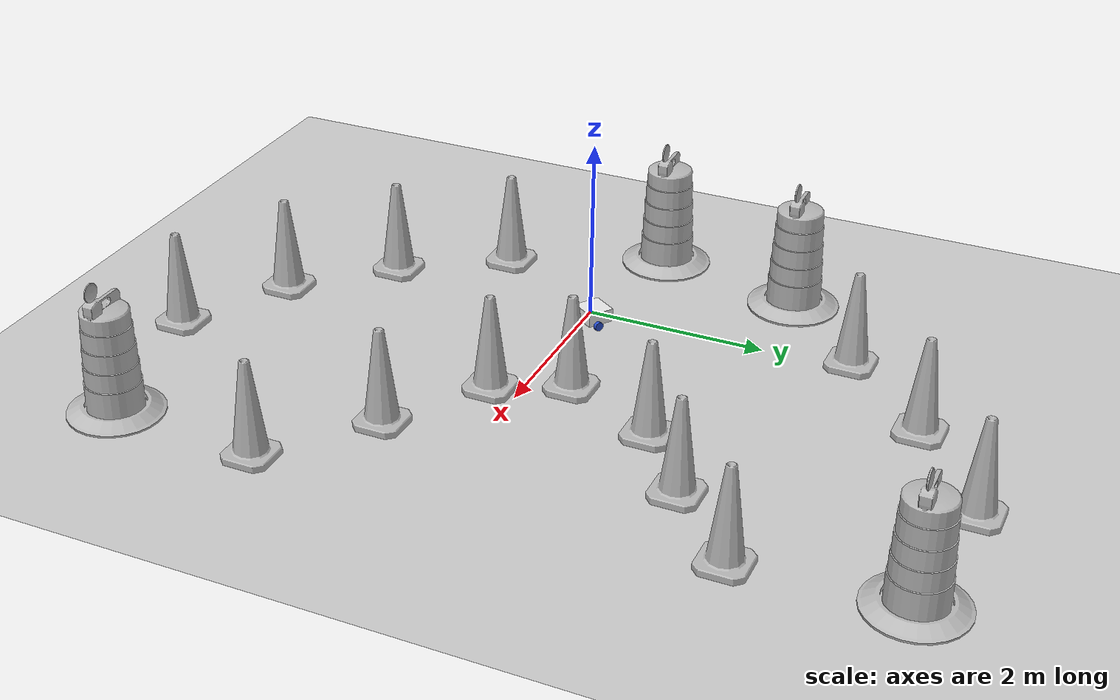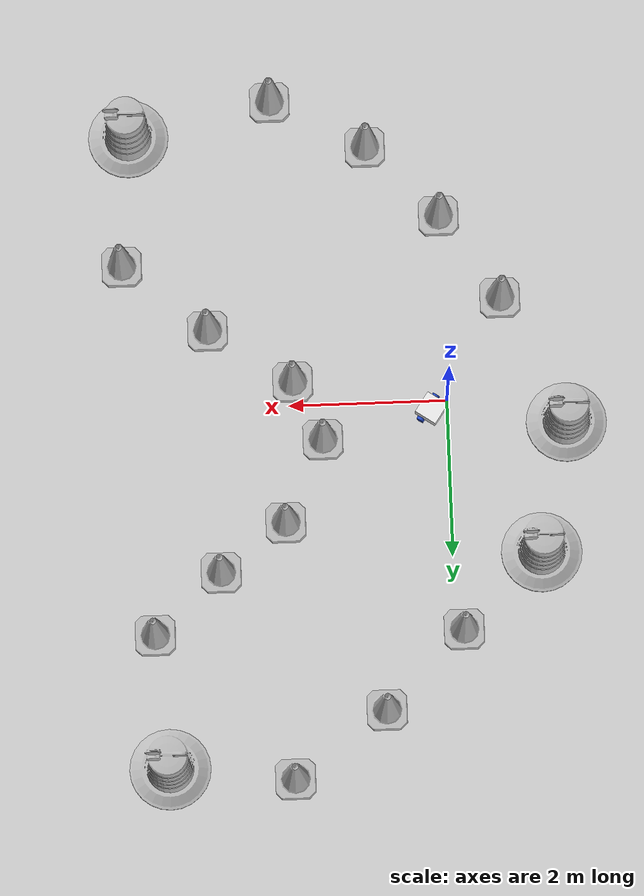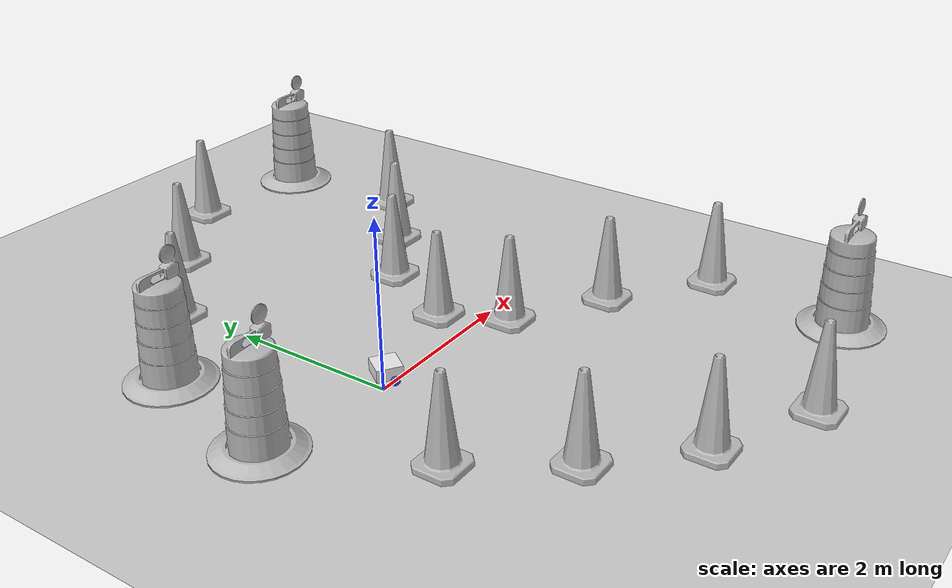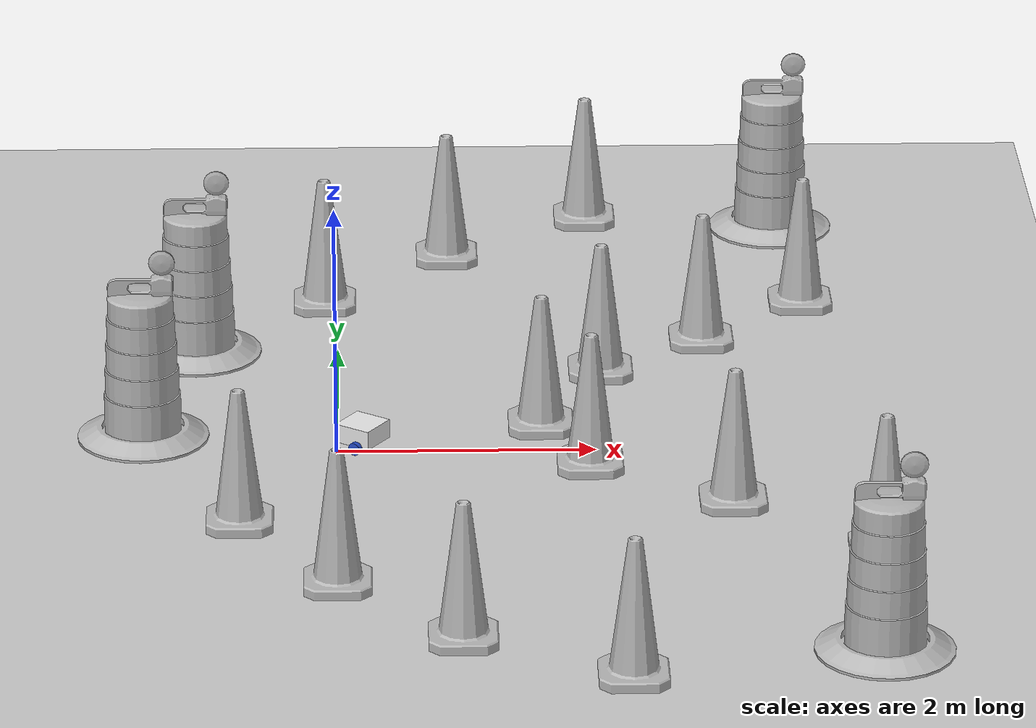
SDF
<sdf version="1.7">
 <world name="default">
  <light name="sun" type="directional">
   <pose>0 0 10 0 -0 0</pose>
   <diffuse>0.8 0.8 0.8 1</diffuse>
   <specular>0.2 0.2 0.2 1</specular>
   <attenuation>
    <range>1000</range>
    <constant>0.9</constant>
    <linear>0.01</linear>
    <quadratic>0.001</quadratic>
   </attenuation>
   <direction>-0.5 0.1 -0.9</direction>
   <spot><inner_angle>0</inner_angle><outer_angle>0</outer_angle><falloff>0</falloff></spot>
  </light>
  <model name="ground_plane">
   <static>1</static>
   <link name="link">
    <collision name="collision">
     <geometry><plane><normal>0 0 1</normal><size>100 100</size></plane></geometry>
     <surface>
      <contact><collide_bitmask>65535</collide_bitmask></contact>
      <friction><ode><mu>100</mu><mu2>50</mu2></ode></friction>
     </surface>
    </collision>
    <visual name="visual">
     <cast_shadows>0</cast_shadows>
     <geometry><plane><normal>0 0 1</normal><size>100 100</size></plane></geometry>
     <material>
      <script><uri>file://media/materials/scripts/gazebo.material</uri><name>Gazebo/Grey</name></script>
     </material>
    </visual>
   </link>
  </model>
  <gravity>0 0 -9.8</gravity>
  <magnetic_field>6e-06 2.3e-05 -4.2e-05</magnetic_field>
  <atmosphere type="adiabatic"/>
  <physics type="ode">
   <max_step_size>0.001</max_step_size>
   <real_time_factor>1</real_time_factor>
   <real_time_update_rate>1000</real_time_update_rate>
  </physics>
  <scene><ambient>0.4 0.4 0.4 1</ambient><background>0.7 0.7 0.7 1</background><shadows>1</shadows></scene>
  <audio><device>default</device></audio>
  <spherical_coordinates>
   <surface_model>EARTH_WGS84</surface_model>
   <latitude_deg>0</latitude_deg>
   <longitude_deg>0</longitude_deg>
   <elevation>0</elevation>
   <heading_deg>0</heading_deg>
  </spherical_coordinates>
  <model name="my_bot">
   <link name="base_link">
    <inertial>
     <pose>0.065 0 0.0625 0 -0 0</pose>
     <mass>0.6</mass>
     <inertia>
      <ixx>0.00525625</ixx>
      <ixy>0</ixy>
      <ixz>0.0005625</ixz>
      <iyy>0.00593125</iyy>
      <iyz>0</iyz>
      <izz>0.008275</izz>
     </inertia>
    </inertial>
    <collision name="base_link_fixed_joint_lump__chassis_collision">
     <pose>0.05 0 0.075 0 -0 0</pose>
     <geometry><box><size>0.3 0.3 0.15</size></box></geometry>
    </collision>
    <collision name="base_link_fixed_joint_lump__caster_wheel_collision_1">
     <pose>0.14 0 0 0 -0 0</pose>
     <geometry><sphere><radius>0.05</radius></sphere></geometry>
     <surface><friction><ode><mu>0.001</mu><mu2>0.001</mu2></ode></friction></surface>
    </collision>
    <visual name="base_link_fixed_joint_lump__chassis_visual">
     <pose>0.05 0 0.075 0 -0 0</pose>
     <geometry><box><size>0.3 0.3 0.15</size></box></geometry>
     <material>
      <script><name>Gazebo/White</name><uri>file://media/materials/scripts/gazebo.material</uri></script>
     </material>
    </visual>
    <visual name="base_link_fixed_joint_lump__caster_wheel_visual_1">
     <pose>0.14 0 0 0 -0 0</pose>
     <geometry><sphere><radius>0.05</radius></sphere></geometry>
     <material>
      <script><name>Gazebo/Black</name><uri>file://media/materials/scripts/gazebo.material</uri></script>
     </material>
    </visual>
   </link>
   <joint name="left_wheel_joint" type="revolute">
    <pose relative_to="base_link">0 0.175 0 -1.5708 0 0</pose>
    <parent>base_link</parent>
    <child>left_wheel</child>
    <axis>
     <xyz>0 0 1</xyz>
     <limit><lower>-1e+16</lower><upper>1e+16</upper></limit>
     <dynamics><spring_reference>0</spring_reference><spring_stiffness>0</spring_stiffness></dynamics>
    </axis>
   </joint>
   <link name="left_wheel">
    <pose relative_to="left_wheel_joint">0 0 0 0 -0 0</pose>
    <inertial>
     <mass>0.1</mass>
     <inertia>
      <ixx>7.58333e-05</ixx>
      <ixy>0</ixy>
      <ixz>0</ixz>
      <iyy>7.58333e-05</iyy>
      <iyz>0</iyz>
      <izz>0.000125</izz>
     </inertia>
    </inertial>
    <collision name="left_wheel_collision">
     <geometry><cylinder><length>0.04</length><radius>0.05</radius></cylinder></geometry>
    </collision>
    <visual name="left_wheel_visual">
     <geometry><cylinder><length>0.04</length><radius>0.05</radius></cylinder></geometry>
     <material>
      <script><name>Gazebo/Blue</name><uri>file://media/materials/scripts/gazebo.material</uri></script>
     </material>
    </visual>
   </link>
   <joint name="right_wheel_joint" type="revolute">
    <pose relative_to="base_link">0 -0.175 0 1.5708 -0 0</pose>
    <parent>base_link</parent>
    <child>right_wheel</child>
    <axis>
     <xyz>0 0 -1</xyz>
     <limit><lower>-1e+16</lower><upper>1e+16</upper></limit>
     <dynamics><spring_reference>0</spring_reference><spring_stiffness>0</spring_stiffness></dynamics>
    </axis>
   </joint>
   <link name="right_wheel">
    <pose relative_to="right_wheel_joint">0 0 0 0 -0 0</pose>
    <inertial>
     <mass>0.1</mass>
     <inertia>
      <ixx>7.58333e-05</ixx>
      <ixy>0</ixy>
      <ixz>0</ixz>
      <iyy>7.58333e-05</iyy>
      <iyz>0</iyz>
      <izz>0.000125</izz>
     </inertia>
    </inertial>
    <collision name="right_wheel_collision">
     <geometry><cylinder><length>0.04</length><radius>0.05</radius></cylinder></geometry>
    </collision>
    <visual name="right_wheel_visual">
     <geometry><cylinder><length>0.04</length><radius>0.05</radius></cylinder></geometry>
     <material>
      <script><name>Gazebo/Blue</name><uri>file://media/materials/scripts/gazebo.material</uri></script>
     </material>
    </visual>
   </link>
   <static>0</static>
   <plugin name="diff_drive" filename="libgazebo_ros_diff_drive.so">
    <left_joint>left_wheel_joint</left_joint>
    <right_joint>right_wheel_joint</right_joint>
    <wheel_separation>0.35</wheel_separation>
    <wheel_diameter>0.1</wheel_diameter>
    <max_wheel_torque>200</max_wheel_torque>
    <max_wheel_acceleration>10.0</max_wheel_acceleration>
    <odometry_frame>odom</odometry_frame>
    <robot_base_frame>base_link</robot_base_frame>
    <publish_odom>1</publish_odom>
    <publish_odom_tf>1</publish_odom_tf>
    <publish_wheel_tf>1</publish_wheel_tf>
   </plugin>
   <pose>0.24301 0.093611 0.05 0 3e-06 2.54337</pose>
  </model>
  <model name="Construction Barrel">
   <link name="link">
    <inertial>
     <pose>0 0 0.4 0 -0 0</pose>
     <mass>500</mass>
     <inertia><ixx>51.2096</ixx><iyy>51.2096</iyy><izz>25</izz><ixy>0</ixy><ixz>0</ixz><iyz>0</iyz></inertia>
    </inertial>
    <collision name="collision">
     <geometry><mesh><uri>model://construction_barrel/meshes/construction_barrel.dae</uri></mesh></geometry>
    </collision>
    <visual name="visual">
     <geometry><mesh><uri>model://construction_barrel/meshes/construction_barrel.dae</uri></mesh></geometry>
    </visual>
   </link>
   <pose>-1.49739 0.326503 -2e-06 -7e-06 4e-06 -1.5e-05</pose>
  </model>
  <model name="Construction Barrel_0">
   <link name="link">
    <inertial>
     <pose>0 0 0.4 0 -0 0</pose>
     <mass>500</mass>
     <inertia><ixx>51.2096</ixx><iyy>51.2096</iyy><izz>25</izz><ixy>0</ixy><ixz>0</ixz><iyz>0</iyz></inertia>
    </inertial>
    <collision name="collision">
     <geometry><mesh><uri>model://construction_barrel/meshes/construction_barrel.dae</uri></mesh></geometry>
    </collision>
    <visual name="visual">
     <geometry><mesh><uri>model://construction_barrel/meshes/construction_barrel.dae</uri></mesh></geometry>
    </visual>
   </link>
   <pose>-1.11816 1.98829 -1e-06 3e-06 -2e-06 -8e-06</pose>
  </model>
  <model name="Construction Cone">
   <link name="link">
    <collision name="collision">
     <geometry>
      <mesh><scale>10 10 10</scale><uri>model://construction_cone/meshes/construction_cone.dae</uri></mesh>
     </geometry>
    </collision>
    <visual name="visual">
     <geometry>
      <mesh><scale>10 10 10</scale><uri>model://construction_cone/meshes/construction_cone.dae</uri></mesh>
     </geometry>
    </visual>
    <inertial>
     <inertia><ixx>1</ixx><ixy>0</ixy><ixz>0</ixz><iyy>1</iyy><iyz>0</iyz><izz>1</izz></inertia>
     <mass>1</mass>
    </inertial>
   </link>
   <pose>-0.719535 -1.30875 -0 0 -0 0</pose>
  </model>
  <model name="Construction Cone_0">
   <link name="link">
    <collision name="collision">
     <geometry>
      <mesh><scale>10 10 10</scale><uri>model://construction_cone/meshes/construction_cone.dae</uri></mesh>
     </geometry>
    </collision>
    <visual name="visual">
     <geometry>
      <mesh><scale>10 10 10</scale><uri>model://construction_cone/meshes/construction_cone.dae</uri></mesh>
     </geometry>
    </visual>
    <inertial>
     <inertia><ixx>1</ixx><ixy>0</ixy><ixz>0</ixz><iyy>1</iyy><iyz>0</iyz><izz>1</izz></inertia>
     <mass>1</mass>
    </inertial>
   </link>
   <pose>0.019819 -2.404 -0 0 -1e-06 0</pose>
  </model>
  <model name="Construction Cone_1">
   <link name="link">
    <collision name="collision">
     <geometry>
      <mesh><scale>10 10 10</scale><uri>model://construction_cone/meshes/construction_cone.dae</uri></mesh>
     </geometry>
    </collision>
    <visual name="visual">
     <geometry>
      <mesh><scale>10 10 10</scale><uri>model://construction_cone/meshes/construction_cone.dae</uri></mesh>
     </geometry>
    </visual>
    <inertial>
     <inertia><ixx>1</ixx><ixy>0</ixy><ixz>0</ixz><iyy>1</iyy><iyz>0</iyz><izz>1</izz></inertia>
     <mass>1</mass>
    </inertial>
   </link>
   <pose>0.924897 -3.33489 -0 0 -1e-06 0</pose>
  </model>
  <model name="Construction Cone_2">
   <link name="link">
    <collision name="collision">
     <geometry>
      <mesh><scale>10 10 10</scale><uri>model://construction_cone/meshes/construction_cone.dae</uri></mesh>
     </geometry>
    </collision>
    <visual name="visual">
     <geometry>
      <mesh><scale>10 10 10</scale><uri>model://construction_cone/meshes/construction_cone.dae</uri></mesh>
     </geometry>
    </visual>
    <inertial>
     <inertia><ixx>1</ixx><ixy>0</ixy><ixz>0</ixz><iyy>1</iyy><iyz>0</iyz><izz>1</izz></inertia>
     <mass>1</mass>
    </inertial>
   </link>
   <pose>2.12257 -3.96742 -0 0 -1e-06 0</pose>
  </model>
  <model name="Construction Cone_clone">
   <link name="link">
    <collision name="collision">
     <geometry>
      <mesh><scale>10 10 10</scale><uri>model://construction_cone/meshes/construction_cone.dae</uri></mesh>
     </geometry>
    </collision>
    <visual name="visual">
     <geometry>
      <mesh><scale>10 10 10</scale><uri>model://construction_cone/meshes/construction_cone.dae</uri></mesh>
     </geometry>
    </visual>
    <inertial>
     <inertia><ixx>1</ixx><ixy>0</ixy><ixz>0</ixz><iyy>1</iyy><iyz>0</iyz><izz>1</izz></inertia>
     <mass>1</mass>
    </inertial>
   </link>
   <pose>4.06567 -1.87071 -0 0 -1e-06 0</pose>
  </model>
  <model name="Construction Cone_clone_0">
   <link name="link">
    <collision name="collision">
     <geometry>
      <mesh><scale>10 10 10</scale><uri>model://construction_cone/meshes/construction_cone.dae</uri></mesh>
     </geometry>
    </collision>
    <visual name="visual">
     <geometry>
      <mesh><scale>10 10 10</scale><uri>model://construction_cone/meshes/construction_cone.dae</uri></mesh>
     </geometry>
    </visual>
    <inertial>
     <inertia><ixx>1</ixx><ixy>0</ixy><ixz>0</ixz><iyy>1</iyy><iyz>0</iyz><izz>1</izz></inertia>
     <mass>1</mass>
    </inertial>
   </link>
   <pose>3 -1 -0 0 -1e-06 0</pose>
  </model>
  <model name="Construction Cone_clone_1">
   <link name="link">
    <collision name="collision">
     <geometry>
      <mesh><scale>10 10 10</scale><uri>model://construction_cone/meshes/construction_cone.dae</uri></mesh>
     </geometry>
    </collision>
    <visual name="visual">
     <geometry>
      <mesh><scale>10 10 10</scale><uri>model://construction_cone/meshes/construction_cone.dae</uri></mesh>
     </geometry>
    </visual>
    <inertial>
     <inertia><ixx>1</ixx><ixy>0</ixy><ixz>0</ixz><iyy>1</iyy><iyz>0</iyz><izz>1</izz></inertia>
     <mass>1</mass>
    </inertial>
   </link>
   <pose>1.9432 -0.302292 -0 0 -1e-06 0</pose>
  </model>
  <model name="Construction Cone_clone_2">
   <link name="link">
    <collision name="collision">
     <geometry>
      <mesh><scale>10 10 10</scale><uri>model://construction_cone/meshes/construction_cone.dae</uri></mesh>
     </geometry>
    </collision>
    <visual name="visual">
     <geometry>
      <mesh><scale>10 10 10</scale><uri>model://construction_cone/meshes/construction_cone.dae</uri></mesh>
     </geometry>
    </visual>
    <inertial>
     <inertia><ixx>1</ixx><ixy>0</ixy><ixz>0</ixz><iyy>1</iyy><iyz>0</iyz><izz>1</izz></inertia>
     <mass>1</mass>
    </inertial>
   </link>
   <pose>1.58549 0.454639 -0 0 -1e-06 0</pose>
  </model>
  <model name="Construction Cone_clone_3">
   <link name="link">
    <collision name="collision">
     <geometry>
      <mesh><scale>10 10 10</scale><uri>model://construction_cone/meshes/construction_cone.dae</uri></mesh>
     </geometry>
    </collision>
    <visual name="visual">
     <geometry>
      <mesh><scale>10 10 10</scale><uri>model://construction_cone/meshes/construction_cone.dae</uri></mesh>
     </geometry>
    </visual>
    <inertial>
     <inertia><ixx>1</ixx><ixy>0</ixy><ixz>0</ixz><iyy>1</iyy><iyz>0</iyz><izz>1</izz></inertia>
     <mass>1</mass>
    </inertial>
   </link>
   <pose>2.92026 2.11945 -0 0 -1e-06 0</pose>
  </model>
  <model name="Construction Cone_clone_4">
   <link name="link">
    <collision name="collision">
     <geometry>
      <mesh><scale>10 10 10</scale><uri>model://construction_cone/meshes/construction_cone.dae</uri></mesh>
     </geometry>
    </collision>
    <visual name="visual">
     <geometry>
      <mesh><scale>10 10 10</scale><uri>model://construction_cone/meshes/construction_cone.dae</uri></mesh>
     </geometry>
    </visual>
    <inertial>
     <inertia><ixx>1</ixx><ixy>0</ixy><ixz>0</ixz><iyy>1</iyy><iyz>0</iyz><izz>1</izz></inertia>
     <mass>1</mass>
    </inertial>
   </link>
   <pose>2.08782 1.50647 -0 0 -1e-06 0</pose>
  </model>
  <model name="Construction Cone_clone_5">
   <link name="link">
    <collision name="collision">
     <geometry>
      <mesh><scale>10 10 10</scale><uri>model://construction_cone/meshes/construction_cone.dae</uri></mesh>
     </geometry>
    </collision>
    <visual name="visual">
     <geometry>
      <mesh><scale>10 10 10</scale><uri>model://construction_cone/meshes/construction_cone.dae</uri></mesh>
     </geometry>
    </visual>
    <inertial>
     <inertia><ixx>1</ixx><ixy>0</ixy><ixz>0</ixz><iyy>1</iyy><iyz>0</iyz><izz>1</izz></inertia>
     <mass>1</mass>
    </inertial>
   </link>
   <pose>3.76884 2.89296 -0 0 -1e-06 0</pose>
  </model>
  <model name="Construction Cone_clone_6">
   <link name="link">
    <collision name="collision">
     <geometry>
      <mesh><scale>10 10 10</scale><uri>model://construction_cone/meshes/construction_cone.dae</uri></mesh>
     </geometry>
    </collision>
    <visual name="visual">
     <geometry>
      <mesh><scale>10 10 10</scale><uri>model://construction_cone/meshes/construction_cone.dae</uri></mesh>
     </geometry>
    </visual>
    <inertial>
     <inertia><ixx>1</ixx><ixy>0</ixy><ixz>0</ixz><iyy>1</iyy><iyz>0</iyz><izz>1</izz></inertia>
     <mass>1</mass>
    </inertial>
   </link>
   <pose>-0.106081 2.94437 -0 0 -1e-06 0</pose>
  </model>
  <model name="Construction Cone_clone_7">
   <link name="link">
    <collision name="collision">
     <geometry>
      <mesh><scale>10 10 10</scale><uri>model://construction_cone/meshes/construction_cone.dae</uri></mesh>
     </geometry>
    </collision>
    <visual name="visual">
     <geometry>
      <mesh><scale>10 10 10</scale><uri>model://construction_cone/meshes/construction_cone.dae</uri></mesh>
     </geometry>
    </visual>
    <inertial>
     <inertia><ixx>1</ixx><ixy>0</ixy><ixz>0</ixz><iyy>1</iyy><iyz>0</iyz><izz>1</izz></inertia>
     <mass>1</mass>
    </inertial>
   </link>
   <pose>0.897981 3.9353 -0 0 -1e-06 0</pose>
  </model>
  <model name="Construction Cone_clone_8">
   <link name="link">
    <collision name="collision">
     <geometry>
      <mesh><scale>10 10 10</scale><uri>model://construction_cone/meshes/construction_cone.dae</uri></mesh>
     </geometry>
    </collision>
    <visual name="visual">
     <geometry>
      <mesh><scale>10 10 10</scale><uri>model://construction_cone/meshes/construction_cone.dae</uri></mesh>
     </geometry>
    </visual>
    <inertial>
     <inertia><ixx>1</ixx><ixy>0</ixy><ixz>0</ixz><iyy>1</iyy><iyz>0</iyz><izz>1</izz></inertia>
     <mass>1</mass>
    </inertial>
   </link>
   <pose>2.06913 4.76921 -0 0 -1e-06 0</pose>
  </model>
  <model name="Construction Barrel_clone">
   <link name="link">
    <inertial>
     <pose>0 0 0.4 0 -0 0</pose>
     <mass>500</mass>
     <inertia><ixx>51.2096</ixx><iyy>51.2096</iyy><izz>25</izz><ixy>0</ixy><ixz>0</ixz><iyz>0</iyz></inertia>
    </inertial>
    <collision name="collision">
     <geometry><mesh><uri>model://construction_barrel/meshes/construction_barrel.dae</uri></mesh></geometry>
    </collision>
    <visual name="visual">
     <geometry><mesh><uri>model://construction_barrel/meshes/construction_barrel.dae</uri></mesh></geometry>
    </visual>
   </link>
   <pose>3.93822 -3.55496 -4e-06 -5e-06 -7e-06 -1.3e-05</pose>
  </model>
  <model name="Construction Barrel_clone_0">
   <link name="link">
    <inertial>
     <pose>0 0 0.4 0 -0 0</pose>
     <mass>500</mass>
     <inertia><ixx>51.2096</ixx><iyy>51.2096</iyy><izz>25</izz><ixy>0</ixy><ixz>0</ixz><iyz>0</iyz></inertia>
    </inertial>
    <collision name="collision">
     <geometry><mesh><uri>model://construction_barrel/meshes/construction_barrel.dae</uri></mesh></geometry>
    </collision>
    <visual name="visual">
     <geometry><mesh><uri>model://construction_barrel/meshes/construction_barrel.dae</uri></mesh></geometry>
    </visual>
   </link>
   <pose>3.62933 4.59109 -4e-06 -5e-06 -7e-06 -1.3e-05</pose>
  </model>
  <light name="user_directional_light_0" type="directional">
   <pose>0.724374 -0.747001 1 0 -0 0</pose>
   <diffuse>0.5 0.5 0.5 1</diffuse>
   <specular>0.1 0.1 0.1 1</specular>
   <direction>0.1 0.1 -0.9</direction>
   <attenuation>
    <range>20</range>
    <constant>0.5</constant>
    <linear>0.01</linear>
    <quadratic>0.001</quadratic>
   </attenuation>
  </light>
 </world>
</sdf>
